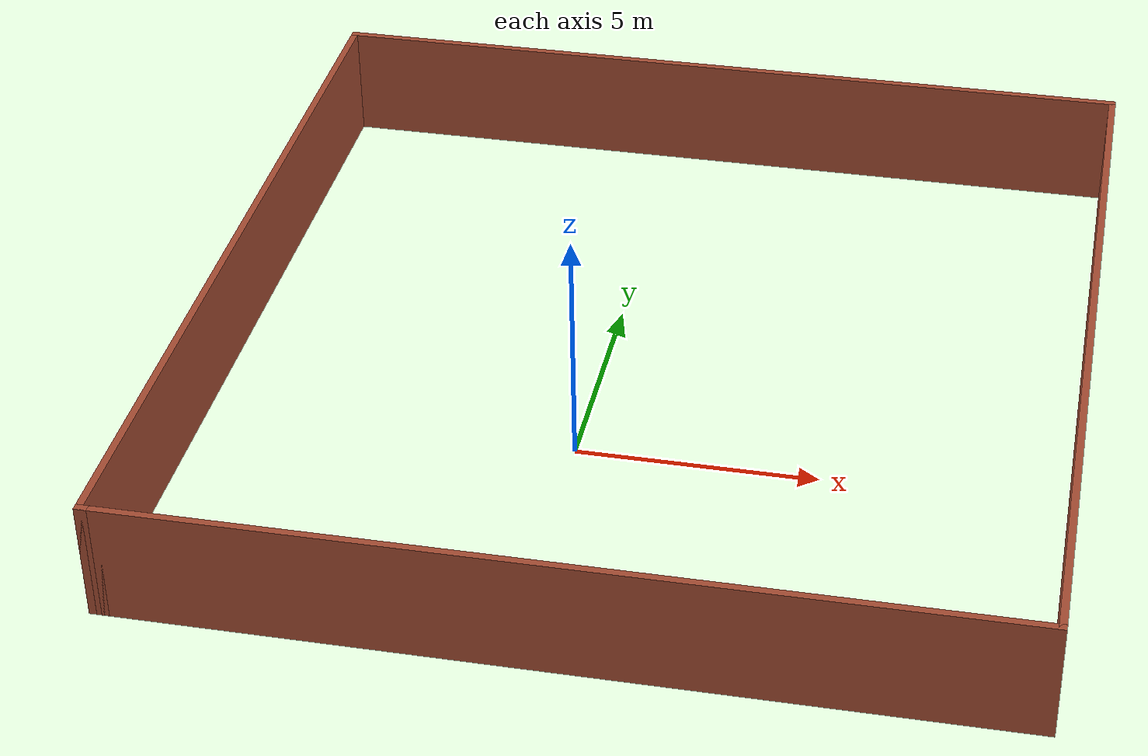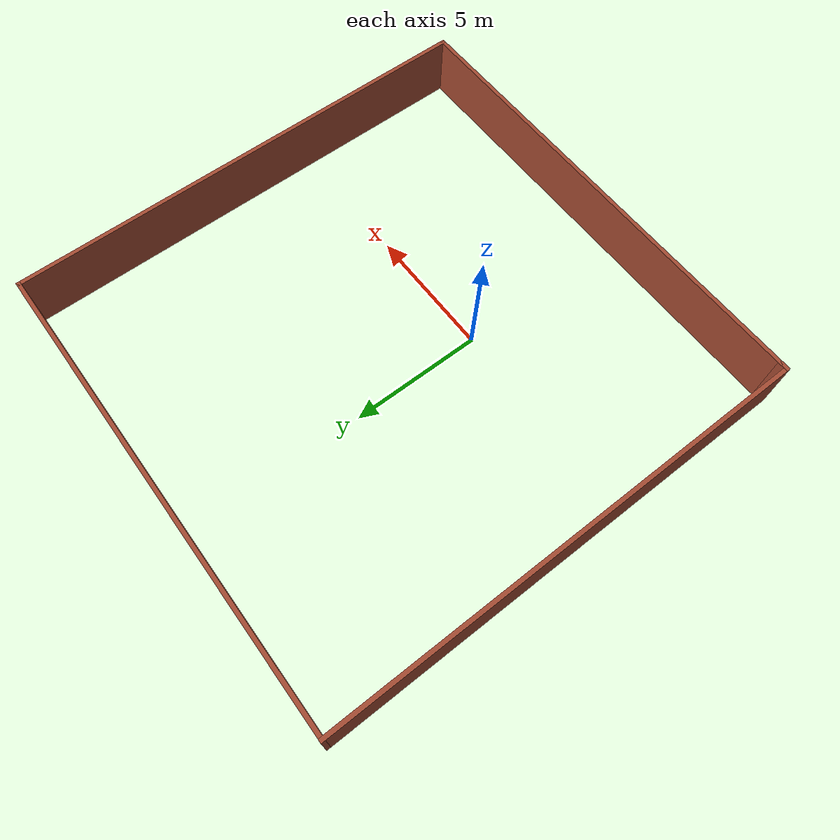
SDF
<?xml version='1.0'?>
<sdf version='1.7'>
  <model name='wall'>
    <pose>1.095 2.675 0 0 -0 0</pose>
    <link name='Wall_0'>
      <collision name='Wall_0_Collision'>
        <geometry>
          <box>
            <size>17.75 0.15 2.5</size>
          </box>
        </geometry>
        <pose>0 0 1.25 0 -0 0</pose>
      </collision>
      <visual name='Wall_0_Visual'>
        <pose>0 0 1.25 0 -0 0</pose>
        <geometry>
          <box>
            <size>17.75 0.15 2.5</size>
          </box>
        </geometry>
        <material>
          <script>
            <uri>file://media/materials/scripts/gazebo.material</uri>
            <name>Gazebo/Bricks</name>
          </script>
          <ambient>1 1 1 1</ambient>
        </material>
        <meta>
          <layer>0</layer>
        </meta>
      </visual>
      <pose>0.125 -9.175 0 0 -0 0</pose>
    </link>
    <link name='Wall_1'>
      <collision name='Wall_1_Collision'>
        <geometry>
          <box>
            <size>18.5 0.15 2.5</size>
          </box>
        </geometry>
        <pose>0 0 1.25 0 -0 0</pose>
      </collision>
      <visual name='Wall_1_Visual'>
        <pose>0 0 1.25 0 -0 0</pose>
        <geometry>
          <box>
            <size>18.5 0.15 2.5</size>
          </box>
        </geometry>
        <material>
          <script>
            <uri>file://media/materials/scripts/gazebo.material</uri>
            <name>Gazebo/Bricks</name>
          </script>
          <ambient>1 1 1 1</ambient>
        </material>
        <meta>
          <layer>0</layer>
        </meta>
      </visual>
      <pose>8.925 -0 0 0 -0 1.5708</pose>
    </link>
    <link name='Wall_4'>
      <collision name='Wall_4_Collision'>
        <geometry>
          <box>
            <size>18 0.15 2.5</size>
          </box>
        </geometry>
        <pose>0 0 1.25 0 -0 0</pose>
      </collision>
      <visual name='Wall_4_Visual'>
        <pose>0 0 1.25 0 -0 0</pose>
        <geometry>
          <box>
            <size>18 0.15 2.5</size>
          </box>
        </geometry>
        <material>
          <script>
            <uri>file://media/materials/scripts/gazebo.material</uri>
            <name>Gazebo/Bricks</name>
          </script>
          <ambient>1 1 1 1</ambient>
        </material>
        <meta>
          <layer>0</layer>
        </meta>
      </visual>
      <pose>0 9.175 0 0 -0 3.14159</pose>
    </link>
    <link name='Wall_5'>
      <collision name='Wall_5_Collision'>
        <geometry>
          <box>
            <size>18.5 0.15 2.5</size>
          </box>
        </geometry>
        <pose>0 0 1.25 0 -0 0</pose>
      </collision>
      <visual name='Wall_5_Visual'>
        <pose>0 0 1.25 0 -0 0</pose>
        <geometry>
          <box>
            <size>18.5 0.15 2.5</size>
          </box>
        </geometry>
        <material>
          <script>
            <uri>file://media/materials/scripts/gazebo.material</uri>
            <name>Gazebo/Bricks</name>
          </script>
          <ambient>1 1 1 1</ambient>
        </material>
        <meta>
          <layer>0</layer>
        </meta>
      </visual>
      <pose>-8.925 -0 0 0 -0 -1.5708</pose>
    </link>
    <link name='Wall_7'>
      <collision name='Wall_7_Collision'>
        <geometry>
          <box>
            <size>0.4 0.15 2.5</size>
          </box>
        </geometry>
        <pose>0 0 1.25 0 -0 0</pose>
      </collision>
      <visual name='Wall_7_Visual'>
        <pose>0 0 1.25 0 -0 0</pose>
        <geometry>
          <box>
            <size>0.4 0.15 2.5</size>
          </box>
        </geometry>
        <material>
          <script>
            <uri>file://media/materials/scripts/gazebo.material</uri>
            <name>Gazebo/Bricks</name>
          </script>
          <ambient>1 1 1 1</ambient>
        </material>
        <meta>
          <layer>0</layer>
        </meta>
      </visual>
      <pose>-8.8 -9.175 0 0 -0 0</pose>
    </link>
    <static>1</static>
  </model>
</sdf>
